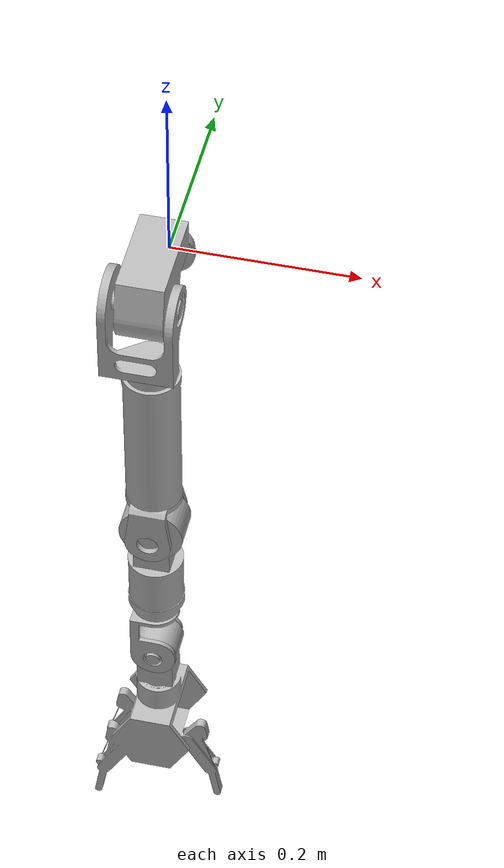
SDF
<?xml version='1.0'?>
<sdf version='1.6'>
  <model name='teo_rightArm'>

    <link name='FrontalRightShoulder_link'>
      <pose>0 0 0 0 -0 0</pose>
      <inertial>
        <pose>-0.002267 -0.056164 0.008456 0 -0 0</pose>
        <mass>2</mass>
        <inertia>
          <ixx>0.004226791</ixx>
          <ixy>0.0000844</ixy>
          <ixz>-0.0000117</ixz>
          <iyy>0.002127281</iyy>
          <iyz>-0.000280493</iyz>
          <izz>0.004093161</izz>
        </inertia>
      </inertial>
      <visual name='FrontalRightShoulder_visual'>
        <geometry>
          <mesh>
            <uri>model://teo/meshes/visual/FrontalRightShoulder.dae</uri>
          </mesh>
        </geometry>
      </visual>
    </link>

    <joint name='FrontalRightShoulder' type='revolute'>
      <parent>teo_trunk::FrontalWaist_link</parent>
      <child>teo_rightArm::FrontalRightShoulder_link</child>
      <axis>
        <xyz>0 1 0</xyz>
        <limit>
          <lower>-1.71</lower>
          <upper>1.85</upper>
        </limit>
      </axis>
    </joint>

    <link name='SagittalRightShoulder_link'>
      <pose>0 -0.084 0 0 -0 0</pose>
      <inertial>
        <pose>-0.008472 -0.004826 -0.027321 0 -0 0</pose>
        <mass>1</mass>
        <inertia>
          <ixx>0.001610932</ixx>
          <ixy>-0.000069</ixy>
          <ixz>-0.000214886</ixz>
          <iyy>0.002187776</iyy>
          <iyz>-0.000069</iyz>
          <izz>0.001173533</izz>
        </inertia>
      </inertial>
      <visual name='SagittalRightShoulder_visual'>
        <geometry>
          <mesh>
            <uri>model://teo/meshes/visual/SagittalRightShoulder.dae</uri>
          </mesh>
        </geometry>
      </visual>
    </link>

    <joint name='SagittalRightShoulder' type='revolute'>
      <parent>teo_rightArm::FrontalRightShoulder_link</parent>
      <child>teo_rightArm::SagittalRightShoulder_link</child>
      <axis>
        <xyz>1 0 0</xyz>
        <limit>
          <lower>-1.32</lower>
          <upper>0.39</upper>
        </limit>
      </axis>
    </joint>

    <link name='AxialRightShoulder_link'>
      <pose>0 -0.084 -0.329 0 -0 0</pose>
      <visual name='AxialRightShoulder_visual'>
        <geometry>
          <mesh>
            <uri>model://teo/meshes/visual/AxialRightShoulder.dae</uri>
          </mesh>
        </geometry>
      </visual>
    </link>

    <joint name='AxialRightShoulder' type='revolute'>
      <parent>teo_rightArm::SagittalRightShoulder_link</parent>
      <child>teo_rightArm::AxialRightShoulder_link</child>
      <axis>
        <xyz>0 0 1</xyz>
        <limit>
          <lower>-1.4</lower>
          <upper>0.99</upper>
        </limit>
      </axis>
    </joint>

    <link name='FrontalRightElbow_link'>
      <pose>0 -0.084 -0.329 0 -0 0</pose>
      <inertial>
        <pose>0.000237 -0.00004 -0.04998 0 -0 0</pose>
        <mass>1</mass>
        <inertia>
          <ixx>0.002590029</ixx>
          <ixy>0</ixy>
          <ixz>0</ixz>
          <iyy>0.00262307</iyy>
          <iyz>0</iyz>
          <izz>0.000446024</izz>
        </inertia>
      </inertial>
      <visual name='FrontalRightElbow_visual'>
        <geometry>
          <mesh>
            <uri>model://teo/meshes/visual/FrontalRightElbow.dae</uri>
          </mesh>
        </geometry>
      </visual>
    </link>

    <joint name='FrontalRightElbow' type='revolute'>
      <parent>teo_rightArm::AxialRightShoulder_link</parent>
      <child>teo_rightArm::FrontalRightElbow_link</child>
      <axis>
        <xyz>0 1 0</xyz>
        <limit>
          <lower>-1.74</lower>
          <upper>1.72</upper>
        </limit>
      </axis>
    </joint>

    <link name='AxialRightWrist_link'>
      <pose>0 -0.084 -0.531 0 -0 0</pose>
      <inertial>
        <pose>-0.001151 0.000603 0.02464 0 -0 0</pose>
        <mass>0.63149</mass>
        <inertia>
          <ixx>0.000701463</ixx>
          <ixy>-0.0000105</ixy>
          <ixz>-0.0000109</ixz>
          <iyy>0.000612806</iyy>
          <iyz>0.0000115</iyz>
          <izz>0.000326949</izz>
        </inertia>
      </inertial>
      <visual name='AxialRightWrist_visual'>
        <geometry>
          <mesh>
            <uri>model://teo/meshes/visual/AxialRightWrist.dae</uri>
          </mesh>
        </geometry>
      </visual>
    </link>

    <joint name='AxialRightWrist' type='revolute'>
      <parent>teo_rightArm::FrontalRightElbow_link</parent>
      <child>teo_rightArm::AxialRightWrist_link</child>
      <axis>
        <xyz>0 0 1</xyz>
        <limit>
          <lower>-1.4</lower>
          <upper>1.74</upper>
        </limit>
      </axis>
    </joint>

    <link name='FrontalRightWrist_link'>
      <pose>0 -0.084 -0.531 0 -0 0</pose>
      <inertial>
        <pose>-0.002314 0.00007 -0.108635 0 -0 0</pose>
        <mass>1.17</mass>
        <inertia>
          <ixx>0.005329957</ixx>
          <ixy>0.000000102</ixy>
          <ixz>0.000114751</ixz>
          <iyy>0.005345282</iyy>
          <iyz>-0.00000807</iyz>
          <izz>0.000883179</izz>
        </inertia>
      </inertial>
      <visual name='FrontalRightWrist_visual'>
        <geometry>
          <mesh>
            <uri>model://teo/meshes/visual/FrontalRightWrist.dae</uri>
          </mesh>
        </geometry>
      </visual>
    </link>

    <joint name='FrontalRightWrist' type='revolute'>
      <parent>teo_rightArm::AxialRightWrist_link</parent>
      <child>teo_rightArm::FrontalRightWrist_link</child>
      <axis>
        <xyz>0 1 0</xyz>
        <limit>
          <lower>-2.01</lower>
          <upper>0.78</upper>
        </limit>
      </axis>
    </joint>

    <plugin name='controlboard_rightArm' filename='libgazebo_yarp_controlboard.so'>
      <yarpConfigurationFile>model://teo/conf/gazebo_teo_rightArm.ini</yarpConfigurationFile>
    </plugin>

  </model>
</sdf>
